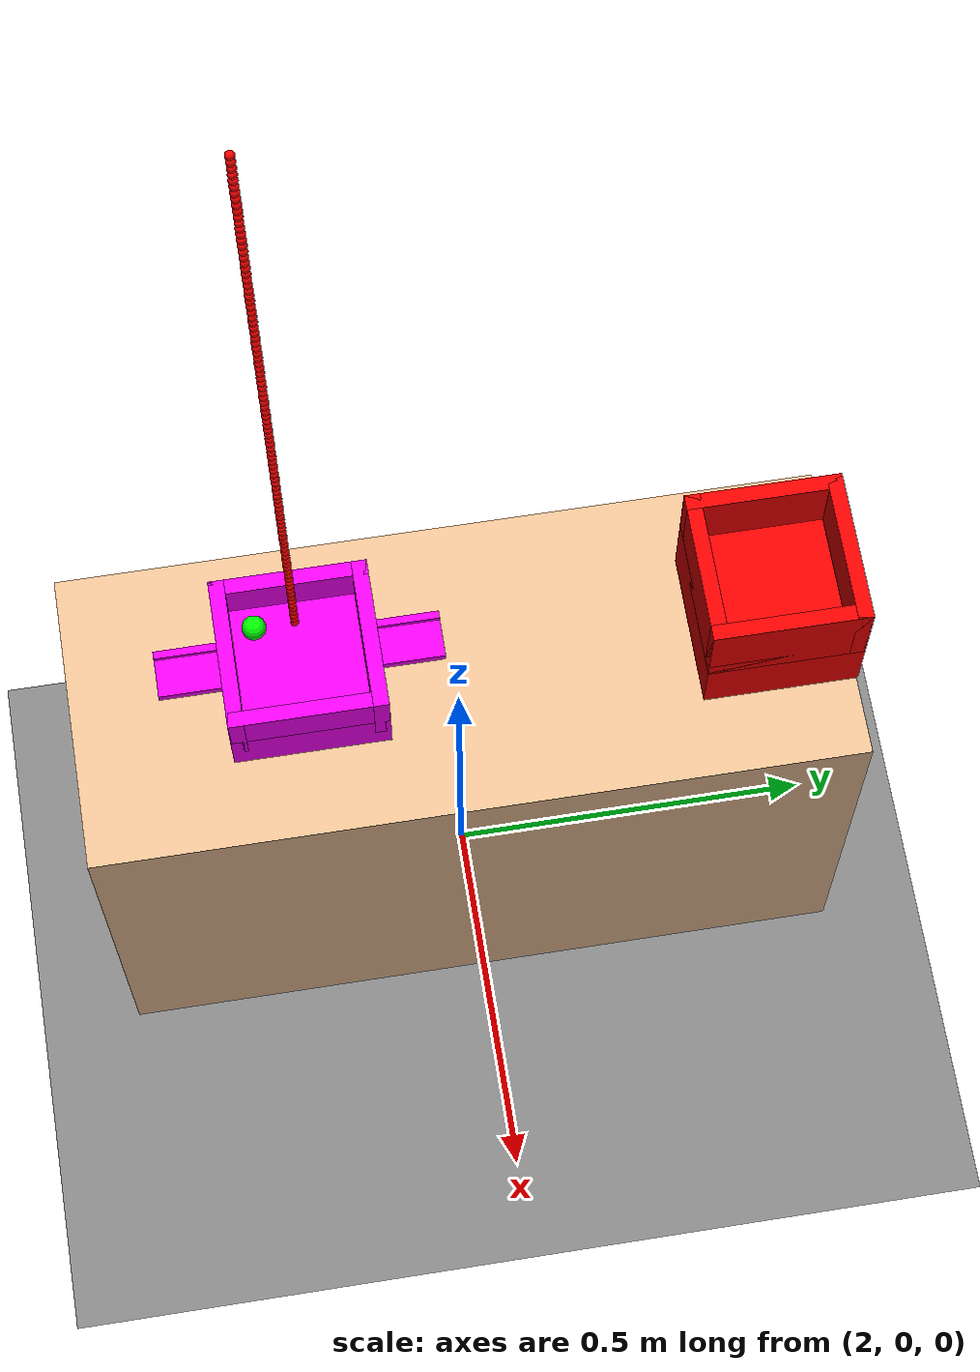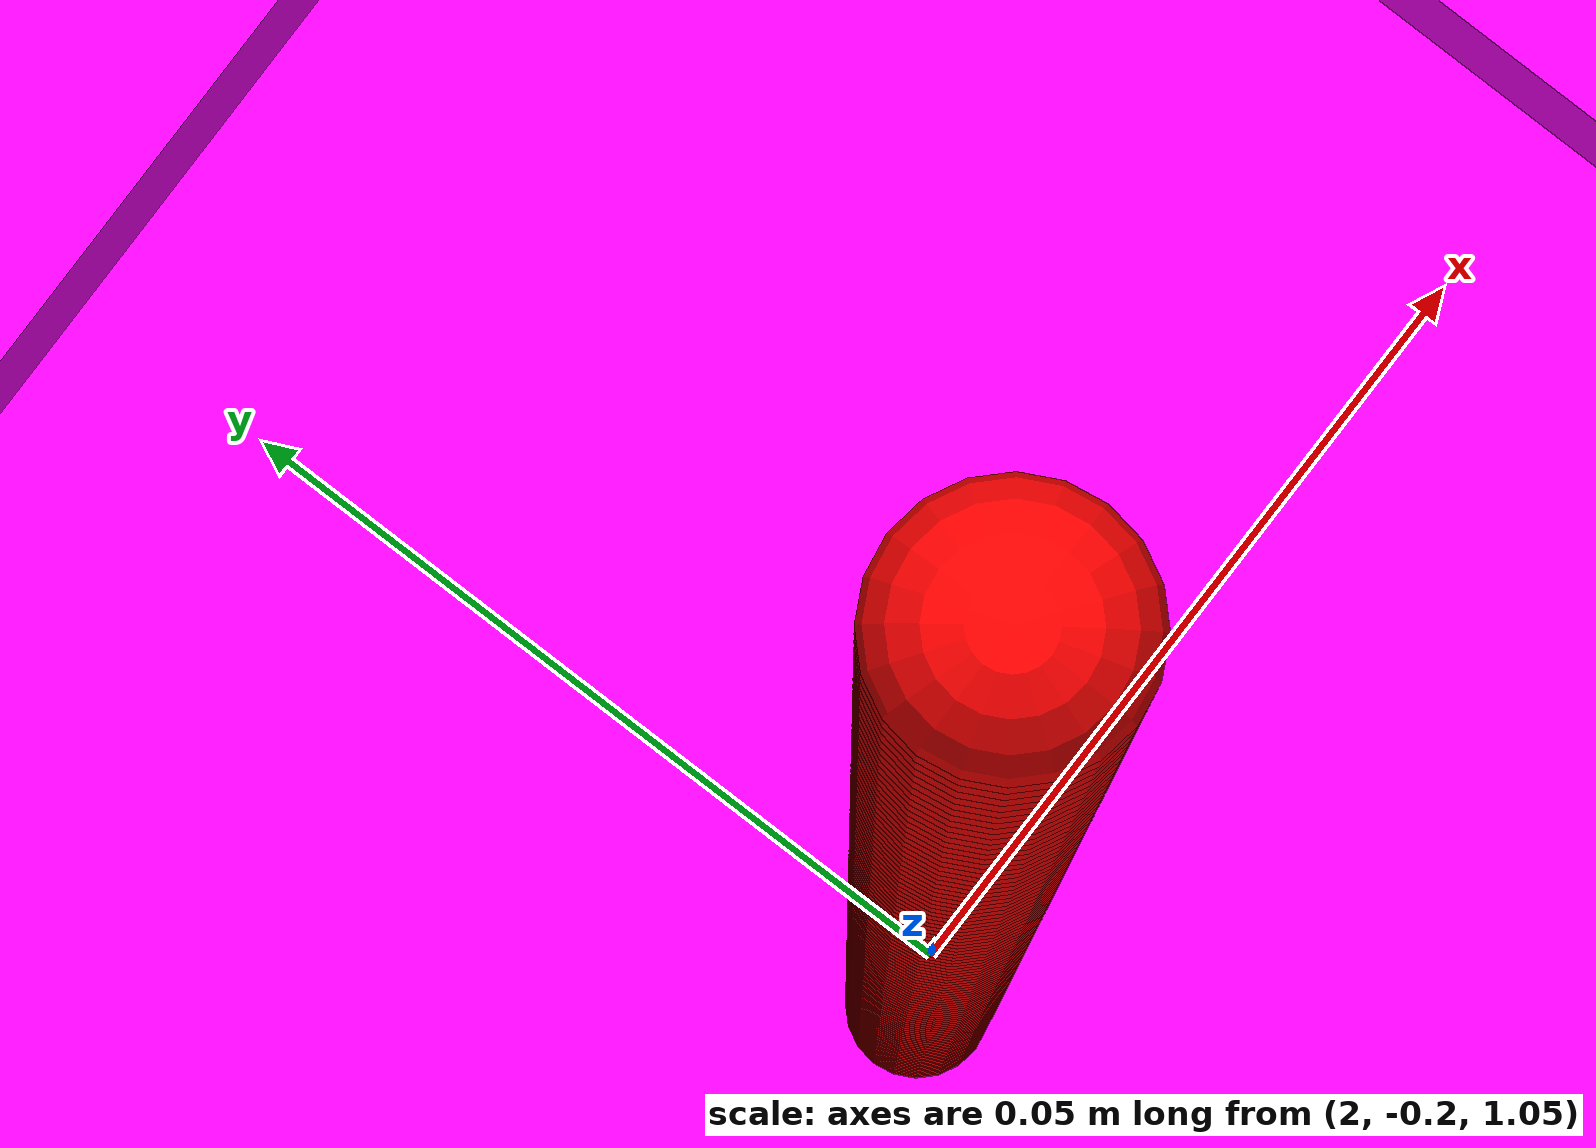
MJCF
<mujoco>
 <option timestep="0.001" integrator="RK4" solver="CG" gravity="0 0 -9.81">
    <flag sensornoise="disable" contact="enable"/>
  	</option>

    <default>
        <geom condim="4" solimp="0.99 0.99 0" solref="0.01 1" friction="1 0.005 0.0001"/>
    </default>

  <asset>
    <texture type="skybox" builtin="gradient" rgb1="1 1 1" rgb2=".6 .8 1" width="256" height="256"/>
	<texture name="grid" type="2d" builtin="checker" width="112" height="112" rgb1="0 0 0" rgb2="1 1 1" />
    <material name="grid" texture="grid" texrepeat="1 1" texuniform="true" reflectance=".2" />
  </asset>

  <worldbody>
    <geom name="floor" size="0 0 .05" type="plane" material="grid" condim="3" />
		<light diffuse="1 1 1" pos="2 0 4" dir="0 0 -1" />
		<light diffuse="1 1 1" pos="2 2 4" dir="0 0 -1" />
		<light diffuse="1 1 1" pos="2 -2 4" dir="0 0 -1" />
  </worldbody>

  <worldbody>
		<body name="table" pos="2 0 0.3">
			<geom name="table_geom" type="box" size="0.2 0.5 0.3" rgba=".89 0.72 .56 1"/>
		</body>

		<body name="bowl" pos="2 0.4 0.7">
			<freejoint/>
			<geom name="bottom" type="box" size="0.1 0.1 0.05" pos="0 0 -0.04" rgba="1 0 0 1"/>

			<geom name="side1" type="box" size="0.01 0.1 0.05" pos="0.09 0 0.04" rgba="1 0 0 1"/>
			<geom name="side2" type="box" size="0.01 0.1 0.05" pos="-0.09 0 0.04" rgba="1 0 0 1"/>
			<geom name="side3" type="box" size="0.1 0.01 0.05" pos="0 0.09 0.04" rgba="1 0 0 1"/>
			<geom name="side4" type="box" size="0.1 0.01 0.05" pos="0 -0.09 0.04" rgba="1 0 0 1"/>
		</body>

        <body name="pot" pos="2 -0.2 0.7" >
			<freejoint/>
			<inertial pos="0.0 0.0 0.0" mass="0.01" diaginertia="0.0008 0.0008 0.00015" />
			<geom name="pot_bottom" type="box" size="0.1 0.1 0.03" pos="0 0 -0.04" rgba="1 0 1 1"/>

			<geom name="pot_side1" type="box" size="0.01 0.1 0.04" pos="0.09 0 0.0" rgba="1 0 1 1" axisangle="0 1 0 0.0"/>
			<geom name="pot_side2" type="box" size="0.01 0.1 0.04" pos="-0.09 0 0.0" rgba="1 0 1 1"/>
			<geom name="pot_side3" type="box" size="0.1 0.01 0.04" pos="0 0.09 0.0" rgba="1 0 1 1"/>
			<geom name="pot_side4" type="box" size="0.1 0.01 0.04" pos="0 -0.09 0.0" rgba="1 0 1 1"/>
			<geom name="pot_side5" type="box" size="0.03 0.04 0.005" pos="0 -0.14 0.0" rgba="1 0 1 1"/>
			<geom name="pot_side6" type="box" size="0.03 0.04 0.005" pos="0 0.14 0.0" rgba="1 0 1 1"/>

      <geom name="pot_side7" type="box" size="0.005 0.04 0.01" pos="-0.025 -0.14 0.0" rgba="1 0 1 1"/>
      <geom name="pot_side8" type="box" size="0.005 0.04 0.01" pos="-0.025 0.14 0.0" rgba="1 0 1 1"/>
		</body>
	</worldbody>

  <worldbody>
		<body name="sync_ball0" pos="2 -0.2 0.8">
			<freejoint/> <inertial pos="0.0 0.0 0.0" mass="0.0001" diaginertia="0.000000001 0.000000001 0.000000001" />
			<geom name="ball0" type="sphere" size="0.005" rgba="1 0 0 1"/>
		</body>
		<body name="sync_ball1" pos="2 -0.2 0.81">
			<freejoint/> <inertial pos="0.0 0.0 0.0" mass="0.0001" diaginertia="0.000000001 0.000000001 0.000000001" />
			<geom name="ball1" type="sphere" size="0.005" rgba="1 0 0 1"/>
		</body>
		<body name="sync_ball2" pos="2 -0.2 0.8200000000000001">
			<freejoint/> <inertial pos="0.0 0.0 0.0" mass="0.0001" diaginertia="0.000000001 0.000000001 0.000000001" />
			<geom name="ball2" type="sphere" size="0.005" rgba="1 0 0 1"/>
		</body>
		<body name="sync_ball3" pos="2 -0.2 0.8300000000000001">
			<freejoint/> <inertial pos="0.0 0.0 0.0" mass="0.0001" diaginertia="0.000000001 0.000000001 0.000000001" />
			<geom name="ball3" type="sphere" size="0.005" rgba="1 0 0 1"/>
		</body>
		<body name="sync_ball4" pos="2 -0.2 0.8400000000000001">
			<freejoint/> <inertial pos="0.0 0.0 0.0" mass="0.0001" diaginertia="0.000000001 0.000000001 0.000000001" />
			<geom name="ball4" type="sphere" size="0.005" rgba="1 0 0 1"/>
		</body>
		<body name="sync_ball5" pos="2 -0.2 0.8500000000000001">
			<freejoint/> <inertial pos="0.0 0.0 0.0" mass="0.0001" diaginertia="0.000000001 0.000000001 0.000000001" />
			<geom name="ball5" type="sphere" size="0.005" rgba="1 0 0 1"/>
		</body>
		<body name="sync_ball6" pos="2 -0.2 0.8600000000000001">
			<freejoint/> <inertial pos="0.0 0.0 0.0" mass="0.0001" diaginertia="0.000000001 0.000000001 0.000000001" />
			<geom name="ball6" type="sphere" size="0.005" rgba="1 0 0 1"/>
		</body>
		<body name="sync_ball7" pos="2 -0.2 0.8700000000000001">
			<freejoint/> <inertial pos="0.0 0.0 0.0" mass="0.0001" diaginertia="0.000000001 0.000000001 0.000000001" />
			<geom name="ball7" type="sphere" size="0.005" rgba="1 0 0 1"/>
		</body>
		<body name="sync_ball8" pos="2 -0.2 0.88">
			<freejoint/> <inertial pos="0.0 0.0 0.0" mass="0.0001" diaginertia="0.000000001 0.000000001 0.000000001" />
			<geom name="ball8" type="sphere" size="0.005" rgba="1 0 0 1"/>
		</body>
		<body name="sync_ball9" pos="2 -0.2 0.89">
			<freejoint/> <inertial pos="0.0 0.0 0.0" mass="0.0001" diaginertia="0.000000001 0.000000001 0.000000001" />
			<geom name="ball9" type="sphere" size="0.005" rgba="1 0 0 1"/>
		</body>
		<body name="sync_ball10" pos="2 -0.2 0.9">
			<freejoint/> <inertial pos="0.0 0.0 0.0" mass="0.0001" diaginertia="0.000000001 0.000000001 0.000000001" />
			<geom name="ball10" type="sphere" size="0.005" rgba="1 0 0 1"/>
		</body>
		<body name="sync_ball11" pos="2 -0.2 0.91">
			<freejoint/> <inertial pos="0.0 0.0 0.0" mass="0.0001" diaginertia="0.000000001 0.000000001 0.000000001" />
			<geom name="ball11" type="sphere" size="0.005" rgba="1 0 0 1"/>
		</body>
		<body name="sync_ball12" pos="2 -0.2 0.92">
			<freejoint/> <inertial pos="0.0 0.0 0.0" mass="0.0001" diaginertia="0.000000001 0.000000001 0.000000001" />
			<geom name="ball12" type="sphere" size="0.005" rgba="1 0 0 1"/>
		</body>
		<body name="sync_ball13" pos="2 -0.2 0.93">
			<freejoint/> <inertial pos="0.0 0.0 0.0" mass="0.0001" diaginertia="0.000000001 0.000000001 0.000000001" />
			<geom name="ball13" type="sphere" size="0.005" rgba="1 0 0 1"/>
		</body>
		<body name="sync_ball14" pos="2 -0.2 0.9400000000000001">
			<freejoint/> <inertial pos="0.0 0.0 0.0" mass="0.0001" diaginertia="0.000000001 0.000000001 0.000000001" />
			<geom name="ball14" type="sphere" size="0.005" rgba="1 0 0 1"/>
		</body>
		<body name="sync_ball15" pos="2 -0.2 0.9500000000000001">
			<freejoint/> <inertial pos="0.0 0.0 0.0" mass="0.0001" diaginertia="0.000000001 0.000000001 0.000000001" />
			<geom name="ball15" type="sphere" size="0.005" rgba="1 0 0 1"/>
		</body>
		<body name="sync_ball16" pos="2 -0.2 0.9600000000000001">
			<freejoint/> <inertial pos="0.0 0.0 0.0" mass="0.0001" diaginertia="0.000000001 0.000000001 0.000000001" />
			<geom name="ball16" type="sphere" size="0.005" rgba="1 0 0 1"/>
		</body>
		<body name="sync_ball17" pos="2 -0.2 0.9700000000000001">
			<freejoint/> <inertial pos="0.0 0.0 0.0" mass="0.0001" diaginertia="0.000000001 0.000000001 0.000000001" />
			<geom name="ball17" type="sphere" size="0.005" rgba="1 0 0 1"/>
		</body>
		<body name="sync_ball18" pos="2 -0.2 0.98">
			<freejoint/> <inertial pos="0.0 0.0 0.0" mass="0.0001" diaginertia="0.000000001 0.000000001 0.000000001" />
			<geom name="ball18" type="sphere" size="0.005" rgba="1 0 0 1"/>
		</body>
		<body name="sync_ball19" pos="2 -0.2 0.99">
			<freejoint/> <inertial pos="0.0 0.0 0.0" mass="0.0001" diaginertia="0.000000001 0.000000001 0.000000001" />
			<geom name="ball19" type="sphere" size="0.005" rgba="1 0 0 1"/>
		</body>
		<body name="sync_ball20" pos="2 -0.2 1.0">
			<freejoint/> <inertial pos="0.0 0.0 0.0" mass="0.0001" diaginertia="0.000000001 0.000000001 0.000000001" />
			<geom name="ball20" type="sphere" size="0.005" rgba="1 0 0 1"/>
		</body>
		<body name="sync_ball21" pos="2 -0.2 1.01">
			<freejoint/> <inertial pos="0.0 0.0 0.0" mass="0.0001" diaginertia="0.000000001 0.000000001 0.000000001" />
			<geom name="ball21" type="sphere" size="0.005" rgba="1 0 0 1"/>
		</body>
		<body name="sync_ball22" pos="2 -0.2 1.02">
			<freejoint/> <inertial pos="0.0 0.0 0.0" mass="0.0001" diaginertia="0.000000001 0.000000001 0.000000001" />
			<geom name="ball22" type="sphere" size="0.005" rgba="1 0 0 1"/>
		</body>
		<body name="sync_ball23" pos="2 -0.2 1.03">
			<freejoint/> <inertial pos="0.0 0.0 0.0" mass="0.0001" diaginertia="0.000000001 0.000000001 0.000000001" />
			<geom name="ball23" type="sphere" size="0.005" rgba="1 0 0 1"/>
		</body>
		<body name="sync_ball24" pos="2 -0.2 1.04">
			<freejoint/> <inertial pos="0.0 0.0 0.0" mass="0.0001" diaginertia="0.000000001 0.000000001 0.000000001" />
			<geom name="ball24" type="sphere" size="0.005" rgba="1 0 0 1"/>
		</body>
		<body name="sync_ball25" pos="2 -0.2 1.05">
			<freejoint/> <inertial pos="0.0 0.0 0.0" mass="0.0001" diaginertia="0.000000001 0.000000001 0.000000001" />
			<geom name="ball25" type="sphere" size="0.005" rgba="1 0 0 1"/>
		</body>
		<body name="sync_ball26" pos="2 -0.2 1.06">
			<freejoint/> <inertial pos="0.0 0.0 0.0" mass="0.0001" diaginertia="0.000000001 0.000000001 0.000000001" />
			<geom name="ball26" type="sphere" size="0.005" rgba="1 0 0 1"/>
		</body>
		<body name="sync_ball27" pos="2 -0.2 1.07">
			<freejoint/> <inertial pos="0.0 0.0 0.0" mass="0.0001" diaginertia="0.000000001 0.000000001 0.000000001" />
			<geom name="ball27" type="sphere" size="0.005" rgba="1 0 0 1"/>
		</body>
		<body name="sync_ball28" pos="2 -0.2 1.08">
			<freejoint/> <inertial pos="0.0 0.0 0.0" mass="0.0001" diaginertia="0.000000001 0.000000001 0.000000001" />
			<geom name="ball28" type="sphere" size="0.005" rgba="1 0 0 1"/>
		</body>
		<body name="sync_ball29" pos="2 -0.2 1.09">
			<freejoint/> <inertial pos="0.0 0.0 0.0" mass="0.0001" diaginertia="0.000000001 0.000000001 0.000000001" />
			<geom name="ball29" type="sphere" size="0.005" rgba="1 0 0 1"/>
		</body>
		<body name="sync_ball30" pos="2 -0.2 1.1">
			<freejoint/> <inertial pos="0.0 0.0 0.0" mass="0.0001" diaginertia="0.000000001 0.000000001 0.000000001" />
			<geom name="ball30" type="sphere" size="0.005" rgba="1 0 0 1"/>
		</body>
		<body name="sync_ball31" pos="2 -0.2 1.11">
			<freejoint/> <inertial pos="0.0 0.0 0.0" mass="0.0001" diaginertia="0.000000001 0.000000001 0.000000001" />
			<geom name="ball31" type="sphere" size="0.005" rgba="1 0 0 1"/>
		</body>
		<body name="sync_ball32" pos="2 -0.2 1.12">
			<freejoint/> <inertial pos="0.0 0.0 0.0" mass="0.0001" diaginertia="0.000000001 0.000000001 0.000000001" />
			<geom name="ball32" type="sphere" size="0.005" rgba="1 0 0 1"/>
		</body>
		<body name="sync_ball33" pos="2 -0.2 1.1300000000000001">
			<freejoint/> <inertial pos="0.0 0.0 0.0" mass="0.0001" diaginertia="0.000000001 0.000000001 0.000000001" />
			<geom name="ball33" type="sphere" size="0.005" rgba="1 0 0 1"/>
		</body>
		<body name="sync_ball34" pos="2 -0.2 1.1400000000000001">
			<freejoint/> <inertial pos="0.0 0.0 0.0" mass="0.0001" diaginertia="0.000000001 0.000000001 0.000000001" />
			<geom name="ball34" type="sphere" size="0.005" rgba="1 0 0 1"/>
		</body>
		<body name="sync_ball35" pos="2 -0.2 1.1500000000000001">
			<freejoint/> <inertial pos="0.0 0.0 0.0" mass="0.0001" diaginertia="0.000000001 0.000000001 0.000000001" />
			<geom name="ball35" type="sphere" size="0.005" rgba="1 0 0 1"/>
		</body>
		<body name="sync_ball36" pos="2 -0.2 1.1600000000000001">
			<freejoint/> <inertial pos="0.0 0.0 0.0" mass="0.0001" diaginertia="0.000000001 0.000000001 0.000000001" />
			<geom name="ball36" type="sphere" size="0.005" rgba="1 0 0 1"/>
		</body>
		<body name="sync_ball37" pos="2 -0.2 1.17">
			<freejoint/> <inertial pos="0.0 0.0 0.0" mass="0.0001" diaginertia="0.000000001 0.000000001 0.000000001" />
			<geom name="ball37" type="sphere" size="0.005" rgba="1 0 0 1"/>
		</body>
		<body name="sync_ball38" pos="2 -0.2 1.1800000000000002">
			<freejoint/> <inertial pos="0.0 0.0 0.0" mass="0.0001" diaginertia="0.000000001 0.000000001 0.000000001" />
			<geom name="ball38" type="sphere" size="0.005" rgba="1 0 0 1"/>
		</body>
		<body name="sync_ball39" pos="2 -0.2 1.19">
			<freejoint/> <inertial pos="0.0 0.0 0.0" mass="0.0001" diaginertia="0.000000001 0.000000001 0.000000001" />
			<geom name="ball39" type="sphere" size="0.005" rgba="1 0 0 1"/>
		</body>
		<body name="sync_ball40" pos="2 -0.2 1.2000000000000002">
			<freejoint/> <inertial pos="0.0 0.0 0.0" mass="0.0001" diaginertia="0.000000001 0.000000001 0.000000001" />
			<geom name="ball40" type="sphere" size="0.005" rgba="1 0 0 1"/>
		</body>
		<body name="sync_ball41" pos="2 -0.2 1.21">
			<freejoint/> <inertial pos="0.0 0.0 0.0" mass="0.0001" diaginertia="0.000000001 0.000000001 0.000000001" />
			<geom name="ball41" type="sphere" size="0.005" rgba="1 0 0 1"/>
		</body>
		<body name="sync_ball42" pos="2 -0.2 1.22">
			<freejoint/> <inertial pos="0.0 0.0 0.0" mass="0.0001" diaginertia="0.000000001 0.000000001 0.000000001" />
			<geom name="ball42" type="sphere" size="0.005" rgba="1 0 0 1"/>
		</body>
		<body name="sync_ball43" pos="2 -0.2 1.23">
			<freejoint/> <inertial pos="0.0 0.0 0.0" mass="0.0001" diaginertia="0.000000001 0.000000001 0.000000001" />
			<geom name="ball43" type="sphere" size="0.005" rgba="1 0 0 1"/>
		</body>
		<body name="sync_ball44" pos="2 -0.2 1.24">
			<freejoint/> <inertial pos="0.0 0.0 0.0" mass="0.0001" diaginertia="0.000000001 0.000000001 0.000000001" />
			<geom name="ball44" type="sphere" size="0.005" rgba="1 0 0 1"/>
		</body>
		<body name="sync_ball45" pos="2 -0.2 1.25">
			<freejoint/> <inertial pos="0.0 0.0 0.0" mass="0.0001" diaginertia="0.000000001 0.000000001 0.000000001" />
			<geom name="ball45" type="sphere" size="0.005" rgba="1 0 0 1"/>
		</body>
		<body name="sync_ball46" pos="2 -0.2 1.26">
			<freejoint/> <inertial pos="0.0 0.0 0.0" mass="0.0001" diaginertia="0.000000001 0.000000001 0.000000001" />
			<geom name="ball46" type="sphere" size="0.005" rgba="1 0 0 1"/>
		</body>
		<body name="sync_ball47" pos="2 -0.2 1.27">
			<freejoint/> <inertial pos="0.0 0.0 0.0" mass="0.0001" diaginertia="0.000000001 0.000000001 0.000000001" />
			<geom name="ball47" type="sphere" size="0.005" rgba="1 0 0 1"/>
		</body>
		<body name="sync_ball48" pos="2 -0.2 1.28">
			<freejoint/> <inertial pos="0.0 0.0 0.0" mass="0.0001" diaginertia="0.000000001 0.000000001 0.000000001" />
			<geom name="ball48" type="sphere" size="0.005" rgba="1 0 0 1"/>
		</body>
		<body name="sync_ball49" pos="2 -0.2 1.29">
			<freejoint/> <inertial pos="0.0 0.0 0.0" mass="0.0001" diaginertia="0.000000001 0.000000001 0.000000001" />
			<geom name="ball49" type="sphere" size="0.005" rgba="1 0 0 1"/>
		</body>
		<body name="sync_ball50" pos="2 -0.2 1.3">
			<freejoint/> <inertial pos="0.0 0.0 0.0" mass="0.0001" diaginertia="0.000000001 0.000000001 0.000000001" />
			<geom name="ball50" type="sphere" size="0.005" rgba="1 0 0 1"/>
		</body>
		<body name="sync_ball51" pos="2 -0.2 1.31">
			<freejoint/> <inertial pos="0.0 0.0 0.0" mass="0.0001" diaginertia="0.000000001 0.000000001 0.000000001" />
			<geom name="ball51" type="sphere" size="0.005" rgba="1 0 0 1"/>
		</body>
		<body name="sync_ball52" pos="2 -0.2 1.32">
			<freejoint/> <inertial pos="0.0 0.0 0.0" mass="0.0001" diaginertia="0.000000001 0.000000001 0.000000001" />
			<geom name="ball52" type="sphere" size="0.005" rgba="1 0 0 1"/>
		</body>
		<body name="sync_ball53" pos="2 -0.2 1.33">
			<freejoint/> <inertial pos="0.0 0.0 0.0" mass="0.0001" diaginertia="0.000000001 0.000000001 0.000000001" />
			<geom name="ball53" type="sphere" size="0.005" rgba="1 0 0 1"/>
		</body>
		<body name="sync_ball54" pos="2 -0.2 1.34">
			<freejoint/> <inertial pos="0.0 0.0 0.0" mass="0.0001" diaginertia="0.000000001 0.000000001 0.000000001" />
			<geom name="ball54" type="sphere" size="0.005" rgba="1 0 0 1"/>
		</body>
		<body name="sync_ball55" pos="2 -0.2 1.35">
			<freejoint/> <inertial pos="0.0 0.0 0.0" mass="0.0001" diaginertia="0.000000001 0.000000001 0.000000001" />
			<geom name="ball55" type="sphere" size="0.005" rgba="1 0 0 1"/>
		</body>
		<body name="sync_ball56" pos="2 -0.2 1.36">
			<freejoint/> <inertial pos="0.0 0.0 0.0" mass="0.0001" diaginertia="0.000000001 0.000000001 0.000000001" />
			<geom name="ball56" type="sphere" size="0.005" rgba="1 0 0 1"/>
		</body>
		<body name="sync_ball57" pos="2 -0.2 1.37">
			<freejoint/> <inertial pos="0.0 0.0 0.0" mass="0.0001" diaginertia="0.000000001 0.000000001 0.000000001" />
			<geom name="ball57" type="sphere" size="0.005" rgba="1 0 0 1"/>
		</body>
		<body name="sync_ball58" pos="2 -0.2 1.38">
			<freejoint/> <inertial pos="0.0 0.0 0.0" mass="0.0001" diaginertia="0.000000001 0.000000001 0.000000001" />
			<geom name="ball58" type="sphere" size="0.005" rgba="1 0 0 1"/>
		</body>
		<body name="sync_ball59" pos="2 -0.2 1.3900000000000001">
			<freejoint/> <inertial pos="0.0 0.0 0.0" mass="0.0001" diaginertia="0.000000001 0.000000001 0.000000001" />
			<geom name="ball59" type="sphere" size="0.005" rgba="1 0 0 1"/>
		</body>
		<body name="sync_ball60" pos="2 -0.2 1.4">
			<freejoint/> <inertial pos="0.0 0.0 0.0" mass="0.0001" diaginertia="0.000000001 0.000000001 0.000000001" />
			<geom name="ball60" type="sphere" size="0.005" rgba="1 0 0 1"/>
		</body>
		<body name="sync_ball61" pos="2 -0.2 1.4100000000000001">
			<freejoint/> <inertial pos="0.0 0.0 0.0" mass="0.0001" diaginertia="0.000000001 0.000000001 0.000000001" />
			<geom name="ball61" type="sphere" size="0.005" rgba="1 0 0 1"/>
		</body>
		<body name="sync_ball62" pos="2 -0.2 1.42">
			<freejoint/> <inertial pos="0.0 0.0 0.0" mass="0.0001" diaginertia="0.000000001 0.000000001 0.000000001" />
			<geom name="ball62" type="sphere" size="0.005" rgba="1 0 0 1"/>
		</body>
		<body name="sync_ball63" pos="2 -0.2 1.4300000000000002">
			<freejoint/> <inertial pos="0.0 0.0 0.0" mass="0.0001" diaginertia="0.000000001 0.000000001 0.000000001" />
			<geom name="ball63" type="sphere" size="0.005" rgba="1 0 0 1"/>
		</body>
		<body name="sync_ball64" pos="2 -0.2 1.44">
			<freejoint/> <inertial pos="0.0 0.0 0.0" mass="0.0001" diaginertia="0.000000001 0.000000001 0.000000001" />
			<geom name="ball64" type="sphere" size="0.005" rgba="1 0 0 1"/>
		</body>
		<body name="sync_ball65" pos="2 -0.2 1.4500000000000002">
			<freejoint/> <inertial pos="0.0 0.0 0.0" mass="0.0001" diaginertia="0.000000001 0.000000001 0.000000001" />
			<geom name="ball65" type="sphere" size="0.005" rgba="1 0 0 1"/>
		</body>
		<body name="sync_ball66" pos="2 -0.2 1.46">
			<freejoint/> <inertial pos="0.0 0.0 0.0" mass="0.0001" diaginertia="0.000000001 0.000000001 0.000000001" />
			<geom name="ball66" type="sphere" size="0.005" rgba="1 0 0 1"/>
		</body>
		<body name="sync_ball67" pos="2 -0.2 1.4700000000000002">
			<freejoint/> <inertial pos="0.0 0.0 0.0" mass="0.0001" diaginertia="0.000000001 0.000000001 0.000000001" />
			<geom name="ball67" type="sphere" size="0.005" rgba="1 0 0 1"/>
		</body>
		<body name="sync_ball68" pos="2 -0.2 1.48">
			<freejoint/> <inertial pos="0.0 0.0 0.0" mass="0.0001" diaginertia="0.000000001 0.000000001 0.000000001" />
			<geom name="ball68" type="sphere" size="0.005" rgba="1 0 0 1"/>
		</body>
		<body name="sync_ball69" pos="2 -0.2 1.4900000000000002">
			<freejoint/> <inertial pos="0.0 0.0 0.0" mass="0.0001" diaginertia="0.000000001 0.000000001 0.000000001" />
			<geom name="ball69" type="sphere" size="0.005" rgba="1 0 0 1"/>
		</body>
		<body name="sync_ball70" pos="2 -0.2 1.5">
			<freejoint/> <inertial pos="0.0 0.0 0.0" mass="0.0001" diaginertia="0.000000001 0.000000001 0.000000001" />
			<geom name="ball70" type="sphere" size="0.005" rgba="1 0 0 1"/>
		</body>
		<body name="sync_ball71" pos="2 -0.2 1.51">
			<freejoint/> <inertial pos="0.0 0.0 0.0" mass="0.0001" diaginertia="0.000000001 0.000000001 0.000000001" />
			<geom name="ball71" type="sphere" size="0.005" rgba="1 0 0 1"/>
		</body>
		<body name="sync_ball72" pos="2 -0.2 1.52">
			<freejoint/> <inertial pos="0.0 0.0 0.0" mass="0.0001" diaginertia="0.000000001 0.000000001 0.000000001" />
			<geom name="ball72" type="sphere" size="0.005" rgba="1 0 0 1"/>
		</body>
		<body name="sync_ball73" pos="2 -0.2 1.53">
			<freejoint/> <inertial pos="0.0 0.0 0.0" mass="0.0001" diaginertia="0.000000001 0.000000001 0.000000001" />
			<geom name="ball73" type="sphere" size="0.005" rgba="1 0 0 1"/>
		</body>
		<body name="sync_ball74" pos="2 -0.2 1.54">
			<freejoint/> <inertial pos="0.0 0.0 0.0" mass="0.0001" diaginertia="0.000000001 0.000000001 0.000000001" />
			<geom name="ball74" type="sphere" size="0.005" rgba="1 0 0 1"/>
		</body>
		<body name="sync_ball75" pos="2 -0.2 1.55">
			<freejoint/> <inertial pos="0.0 0.0 0.0" mass="0.0001" diaginertia="0.000000001 0.000000001 0.000000001" />
			<geom name="ball75" type="sphere" size="0.005" rgba="1 0 0 1"/>
		</body>
		<body name="sync_ball76" pos="2 -0.2 1.56">
			<freejoint/> <inertial pos="0.0 0.0 0.0" mass="0.0001" diaginertia="0.000000001 0.000000001 0.000000001" />
			<geom name="ball76" type="sphere" size="0.005" rgba="1 0 0 1"/>
		</body>
		<body name="sync_ball77" pos="2 -0.2 1.57">
			<freejoint/> <inertial pos="0.0 0.0 0.0" mass="0.0001" diaginertia="0.000000001 0.000000001 0.000000001" />
			<geom name="ball77" type="sphere" size="0.005" rgba="1 0 0 1"/>
		</body>
		<body name="sync_ball78" pos="2 -0.2 1.58">
			<freejoint/> <inertial pos="0.0 0.0 0.0" mass="0.0001" diaginertia="0.000000001 0.000000001 0.000000001" />
			<geom name="ball78" type="sphere" size="0.005" rgba="1 0 0 1"/>
		</body>
		<body name="sync_ball79" pos="2 -0.2 1.59">
			<freejoint/> <inertial pos="0.0 0.0 0.0" mass="0.0001" diaginertia="0.000000001 0.000000001 0.000000001" />
			<geom name="ball79" type="sphere" size="0.005" rgba="1 0 0 1"/>
		</body>
		<body name="sync_ball80" pos="2 -0.2 1.6">
			<freejoint/> <inertial pos="0.0 0.0 0.0" mass="0.0001" diaginertia="0.000000001 0.000000001 0.000000001" />
			<geom name="ball80" type="sphere" size="0.005" rgba="1 0 0 1"/>
		</body>
		<body name="sync_ball81" pos="2 -0.2 1.61">
			<freejoint/> <inertial pos="0.0 0.0 0.0" mass="0.0001" diaginertia="0.000000001 0.000000001 0.000000001" />
			<geom name="ball81" type="sphere" size="0.005" rgba="1 0 0 1"/>
		</body>
		<body name="sync_ball82" pos="2 -0.2 1.62">
			<freejoint/> <inertial pos="0.0 0.0 0.0" mass="0.0001" diaginertia="0.000000001 0.000000001 0.000000001" />
			<geom name="ball82" type="sphere" size="0.005" rgba="1 0 0 1"/>
		</body>
		<body name="sync_ball83" pos="2 -0.2 1.6300000000000001">
			<freejoint/> <inertial pos="0.0 0.0 0.0" mass="0.0001" diaginertia="0.000000001 0.000000001 0.000000001" />
			<geom name="ball83" type="sphere" size="0.005" rgba="1 0 0 1"/>
		</body>
		<body name="sync_ball84" pos="2 -0.2 1.6400000000000001">
			<freejoint/> <inertial pos="0.0 0.0 0.0" mass="0.0001" diaginertia="0.000000001 0.000000001 0.000000001" />
			<geom name="ball84" type="sphere" size="0.005" rgba="1 0 0 1"/>
		</body>
		<body name="sync_ball85" pos="2 -0.2 1.65">
			<freejoint/> <inertial pos="0.0 0.0 0.0" mass="0.0001" diaginertia="0.000000001 0.000000001 0.000000001" />
			<geom name="ball85" type="sphere" size="0.005" rgba="1 0 0 1"/>
		</body>
		<body name="sync_ball86" pos="2 -0.2 1.6600000000000001">
			<freejoint/> <inertial pos="0.0 0.0 0.0" mass="0.0001" diaginertia="0.000000001 0.000000001 0.000000001" />
			<geom name="ball86" type="sphere" size="0.005" rgba="1 0 0 1"/>
		</body>
		<body name="sync_ball87" pos="2 -0.2 1.67">
			<freejoint/> <inertial pos="0.0 0.0 0.0" mass="0.0001" diaginertia="0.000000001 0.000000001 0.000000001" />
			<geom name="ball87" type="sphere" size="0.005" rgba="1 0 0 1"/>
		</body>
		<body name="sync_ball88" pos="2 -0.2 1.6800000000000002">
			<freejoint/> <inertial pos="0.0 0.0 0.0" mass="0.0001" diaginertia="0.000000001 0.000000001 0.000000001" />
			<geom name="ball88" type="sphere" size="0.005" rgba="1 0 0 1"/>
		</body>
		<body name="sync_ball89" pos="2 -0.2 1.69">
			<freejoint/> <inertial pos="0.0 0.0 0.0" mass="0.0001" diaginertia="0.000000001 0.000000001 0.000000001" />
			<geom name="ball89" type="sphere" size="0.005" rgba="1 0 0 1"/>
		</body>
		<body name="sync_ball90" pos="2 -0.2 1.7000000000000002">
			<freejoint/> <inertial pos="0.0 0.0 0.0" mass="0.0001" diaginertia="0.000000001 0.000000001 0.000000001" />
			<geom name="ball90" type="sphere" size="0.005" rgba="1 0 0 1"/>
		</body>
		<body name="sync_ball91" pos="2 -0.2 1.71">
			<freejoint/> <inertial pos="0.0 0.0 0.0" mass="0.0001" diaginertia="0.000000001 0.000000001 0.000000001" />
			<geom name="ball91" type="sphere" size="0.005" rgba="1 0 0 1"/>
		</body>
		<body name="sync_ball92" pos="2 -0.2 1.7200000000000002">
			<freejoint/> <inertial pos="0.0 0.0 0.0" mass="0.0001" diaginertia="0.000000001 0.000000001 0.000000001" />
			<geom name="ball92" type="sphere" size="0.005" rgba="1 0 0 1"/>
		</body>
		<body name="sync_ball93" pos="2 -0.2 1.73">
			<freejoint/> <inertial pos="0.0 0.0 0.0" mass="0.0001" diaginertia="0.000000001 0.000000001 0.000000001" />
			<geom name="ball93" type="sphere" size="0.005" rgba="1 0 0 1"/>
		</body>
		<body name="sync_ball94" pos="2 -0.2 1.7400000000000002">
			<freejoint/> <inertial pos="0.0 0.0 0.0" mass="0.0001" diaginertia="0.000000001 0.000000001 0.000000001" />
			<geom name="ball94" type="sphere" size="0.005" rgba="1 0 0 1"/>
		</body>
		<body name="sync_ball95" pos="2 -0.2 1.75">
			<freejoint/> <inertial pos="0.0 0.0 0.0" mass="0.0001" diaginertia="0.000000001 0.000000001 0.000000001" />
			<geom name="ball95" type="sphere" size="0.005" rgba="1 0 0 1"/>
		</body>
		<body name="sync_ball96" pos="2 -0.2 1.76">
			<freejoint/> <inertial pos="0.0 0.0 0.0" mass="0.0001" diaginertia="0.000000001 0.000000001 0.000000001" />
			<geom name="ball96" type="sphere" size="0.005" rgba="1 0 0 1"/>
		</body>
		<body name="sync_ball97" pos="2 -0.2 1.77">
			<freejoint/> <inertial pos="0.0 0.0 0.0" mass="0.0001" diaginertia="0.000000001 0.000000001 0.000000001" />
			<geom name="ball97" type="sphere" size="0.005" rgba="1 0 0 1"/>
		</body>
		<body name="sync_ball98" pos="2 -0.2 1.78">
			<freejoint/> <inertial pos="0.0 0.0 0.0" mass="0.0001" diaginertia="0.000000001 0.000000001 0.000000001" />
			<geom name="ball98" type="sphere" size="0.005" rgba="1 0 0 1"/>
		</body>
		<body name="sync_ball99" pos="2 -0.2 1.79">
			<freejoint/> <inertial pos="0.0 0.0 0.0" mass="0.0001" diaginertia="0.000000001 0.000000001 0.000000001" />
			<geom name="ball99" type="sphere" size="0.005" rgba="1 0 0 1"/>
		</body>
    <body name="big_ball" pos="2 -0.25 0.8">
			<freejoint/> <inertial pos="0.0 0.0 0.0" mass="0.01" diaginertia="0.0001 0.0001 0.0001"/>
			<geom name="big_ball" type="sphere" size="0.015 0.015 0.015" rgba="0 1 0 1"/>
		</body>

	</worldbody>

<contact>
 <pair geom1="ball0" geom2="pot_bottom" friction="0.5 0.0005 0.00001"/>
</contact>
<contact>
 <pair geom1="ball1" geom2="pot_bottom" friction="0.5 0.0005 0.00001"/>
</contact>
<contact>
 <pair geom1="ball2" geom2="pot_bottom" friction="0.5 0.0005 0.00001"/>
</contact>
<contact>
 <pair geom1="ball3" geom2="pot_bottom" friction="0.5 0.0005 0.00001"/>
</contact>
<contact>
 <pair geom1="ball4" geom2="pot_bottom" friction="0.5 0.0005 0.00001"/>
</contact>
<contact>
 <pair geom1="ball5" geom2="pot_bottom" friction="0.5 0.0005 0.00001"/>
</contact>
<contact>
 <pair geom1="ball6" geom2="pot_bottom" friction="0.5 0.0005 0.00001"/>
</contact>
<contact>
 <pair geom1="ball7" geom2="pot_bottom" friction="0.5 0.0005 0.00001"/>
</contact>
<contact>
 <pair geom1="ball8" geom2="pot_bottom" friction="0.5 0.0005 0.00001"/>
</contact>
<contact>
 <pair geom1="ball9" geom2="pot_bottom" friction="0.5 0.0005 0.00001"/>
</contact>
<contact>
 <pair geom1="ball10" geom2="pot_bottom" friction="0.5 0.0005 0.00001"/>
</contact>
<contact>
 <pair geom1="ball11" geom2="pot_bottom" friction="0.5 0.0005 0.00001"/>
</contact>
<contact>
 <pair geom1="ball12" geom2="pot_bottom" friction="0.5 0.0005 0.00001"/>
</contact>
<contact>
 <pair geom1="ball13" geom2="pot_bottom" friction="0.5 0.0005 0.00001"/>
</contact>
<contact>
 <pair geom1="ball14" geom2="pot_bottom" friction="0.5 0.0005 0.00001"/>
</contact>
<contact>
 <pair geom1="ball15" geom2="pot_bottom" friction="0.5 0.0005 0.00001"/>
</contact>
<contact>
 <pair geom1="ball16" geom2="pot_bottom" friction="0.5 0.0005 0.00001"/>
</contact>
<contact>
 <pair geom1="ball17" geom2="pot_bottom" friction="0.5 0.0005 0.00001"/>
</contact>
<contact>
 <pair geom1="ball18" geom2="pot_bottom" friction="0.5 0.0005 0.00001"/>
</contact>
<contact>
 <pair geom1="ball19" geom2="pot_bottom" friction="0.5 0.0005 0.00001"/>
</contact>
<contact>
 <pair geom1="ball20" geom2="pot_bottom" friction="0.5 0.0005 0.00001"/>
</contact>
<contact>
 <pair geom1="ball21" geom2="pot_bottom" friction="0.5 0.0005 0.00001"/>
</contact>
<contact>
 <pair geom1="ball22" geom2="pot_bottom" friction="0.5 0.0005 0.00001"/>
</contact>
<contact>
 <pair geom1="ball23" geom2="pot_bottom" friction="0.5 0.0005 0.00001"/>
</contact>
<contact>
 <pair geom1="ball24" geom2="pot_bottom" friction="0.5 0.0005 0.00001"/>
</contact>
<contact>
 <pair geom1="ball25" geom2="pot_bottom" friction="0.5 0.0005 0.00001"/>
</contact>
<contact>
 <pair geom1="ball26" geom2="pot_bottom" friction="0.5 0.0005 0.00001"/>
</contact>
<contact>
 <pair geom1="ball27" geom2="pot_bottom" friction="0.5 0.0005 0.00001"/>
</contact>
<contact>
 <pair geom1="ball28" geom2="pot_bottom" friction="0.5 0.0005 0.00001"/>
</contact>
<contact>
 <pair geom1="ball29" geom2="pot_bottom" friction="0.5 0.0005 0.00001"/>
</contact>
<contact>
 <pair geom1="ball30" geom2="pot_bottom" friction="0.5 0.0005 0.00001"/>
</contact>
<contact>
 <pair geom1="ball31" geom2="pot_bottom" friction="0.5 0.0005 0.00001"/>
</contact>
<contact>
 <pair geom1="ball32" geom2="pot_bottom" friction="0.5 0.0005 0.00001"/>
</contact>
<contact>
 <pair geom1="ball33" geom2="pot_bottom" friction="0.5 0.0005 0.00001"/>
</contact>
<contact>
 <pair geom1="ball34" geom2="pot_bottom" friction="0.5 0.0005 0.00001"/>
</contact>
<contact>
 <pair geom1="ball35" geom2="pot_bottom" friction="0.5 0.0005 0.00001"/>
</contact>
<contact>
 <pair geom1="ball36" geom2="pot_bottom" friction="0.5 0.0005 0.00001"/>
</contact>
<contact>
 <pair geom1="ball37" geom2="pot_bottom" friction="0.5 0.0005 0.00001"/>
</contact>
<contact>
 <pair geom1="ball38" geom2="pot_bottom" friction="0.5 0.0005 0.00001"/>
</contact>
<contact>
 <pair geom1="ball39" geom2="pot_bottom" friction="0.5 0.0005 0.00001"/>
</contact>
<contact>
 <pair geom1="ball40" geom2="pot_bottom" friction="0.5 0.0005 0.00001"/>
</contact>
<contact>
 <pair geom1="ball41" geom2="pot_bottom" friction="0.5 0.0005 0.00001"/>
</contact>
<contact>
 <pair geom1="ball42" geom2="pot_bottom" friction="0.5 0.0005 0.00001"/>
</contact>
<contact>
 <pair geom1="ball43" geom2="pot_bottom" friction="0.5 0.0005 0.00001"/>
</contact>
<contact>
 <pair geom1="ball44" geom2="pot_bottom" friction="0.5 0.0005 0.00001"/>
</contact>
<contact>
 <pair geom1="ball45" geom2="pot_bottom" friction="0.5 0.0005 0.00001"/>
</contact>
<contact>
 <pair geom1="ball46" geom2="pot_bottom" friction="0.5 0.0005 0.00001"/>
</contact>
<contact>
 <pair geom1="ball47" geom2="pot_bottom" friction="0.5 0.0005 0.00001"/>
</contact>
<contact>
 <pair geom1="ball48" geom2="pot_bottom" friction="0.5 0.0005 0.00001"/>
</contact>
<contact>
 <pair geom1="ball49" geom2="pot_bottom" friction="0.5 0.0005 0.00001"/>
</contact>
<contact>
 <pair geom1="ball50" geom2="pot_bottom" friction="0.5 0.0005 0.00001"/>
</contact>
<contact>
 <pair geom1="ball51" geom2="pot_bottom" friction="0.5 0.0005 0.00001"/>
</contact>
<contact>
 <pair geom1="ball52" geom2="pot_bottom" friction="0.5 0.0005 0.00001"/>
</contact>
<contact>
 <pair geom1="ball53" geom2="pot_bottom" friction="0.5 0.0005 0.00001"/>
</contact>
<contact>
 <pair geom1="ball54" geom2="pot_bottom" friction="0.5 0.0005 0.00001"/>
</contact>
<contact>
 <pair geom1="ball55" geom2="pot_bottom" friction="0.5 0.0005 0.00001"/>
</contact>
<contact>
 <pair geom1="ball56" geom2="pot_bottom" friction="0.5 0.0005 0.00001"/>
</contact>
<contact>
 <pair geom1="ball57" geom2="pot_bottom" friction="0.5 0.0005 0.00001"/>
</contact>
<contact>
 <pair geom1="ball58" geom2="pot_bottom" friction="0.5 0.0005 0.00001"/>
</contact>
<contact>
 <pair geom1="ball59" geom2="pot_bottom" friction="0.5 0.0005 0.00001"/>
</contact>
<contact>
 <pair geom1="ball60" geom2="pot_bottom" friction="0.5 0.0005 0.00001"/>
</contact>
<contact>
 <pair geom1="ball61" geom2="pot_bottom" friction="0.5 0.0005 0.00001"/>
</contact>
<contact>
 <pair geom1="ball62" geom2="pot_bottom" friction="0.5 0.0005 0.00001"/>
</contact>
<contact>
 <pair geom1="ball63" geom2="pot_bottom" friction="0.5 0.0005 0.00001"/>
</contact>
<contact>
 <pair geom1="ball64" geom2="pot_bottom" friction="0.5 0.0005 0.00001"/>
</contact>
<contact>
 <pair geom1="ball65" geom2="pot_bottom" friction="0.5 0.0005 0.00001"/>
</contact>
<contact>
 <pair geom1="ball66" geom2="pot_bottom" friction="0.5 0.0005 0.00001"/>
</contact>
<contact>
 <pair geom1="ball67" geom2="pot_bottom" friction="0.5 0.0005 0.00001"/>
</contact>
<contact>
 <pair geom1="ball68" geom2="pot_bottom" friction="0.5 0.0005 0.00001"/>
</contact>
<contact>
 <pair geom1="ball69" geom2="pot_bottom" friction="0.5 0.0005 0.00001"/>
</contact>
<contact>
 <pair geom1="ball70" geom2="pot_bottom" friction="0.5 0.0005 0.00001"/>
</contact>
<contact>
 <pair geom1="ball71" geom2="pot_bottom" friction="0.5 0.0005 0.00001"/>
</contact>
<contact>
 <pair geom1="ball72" geom2="pot_bottom" friction="0.5 0.0005 0.00001"/>
</contact>
<contact>
 <pair geom1="ball73" geom2="pot_bottom" friction="0.5 0.0005 0.00001"/>
</contact>
<contact>
 <pair geom1="ball74" geom2="pot_bottom" friction="0.5 0.0005 0.00001"/>
</contact>
<contact>
 <pair geom1="ball75" geom2="pot_bottom" friction="0.5 0.0005 0.00001"/>
</contact>
<contact>
 <pair geom1="ball76" geom2="pot_bottom" friction="0.5 0.0005 0.00001"/>
</contact>
<contact>
 <pair geom1="ball77" geom2="pot_bottom" friction="0.5 0.0005 0.00001"/>
</contact>
<contact>
 <pair geom1="ball78" geom2="pot_bottom" friction="0.5 0.0005 0.00001"/>
</contact>
<contact>
 <pair geom1="ball79" geom2="pot_bottom" friction="0.5 0.0005 0.00001"/>
</contact>
<contact>
 <pair geom1="ball80" geom2="pot_bottom" friction="0.5 0.0005 0.00001"/>
</contact>
<contact>
 <pair geom1="ball81" geom2="pot_bottom" friction="0.5 0.0005 0.00001"/>
</contact>
<contact>
 <pair geom1="ball82" geom2="pot_bottom" friction="0.5 0.0005 0.00001"/>
</contact>
<contact>
 <pair geom1="ball83" geom2="pot_bottom" friction="0.5 0.0005 0.00001"/>
</contact>
<contact>
 <pair geom1="ball84" geom2="pot_bottom" friction="0.5 0.0005 0.00001"/>
</contact>
<contact>
 <pair geom1="ball85" geom2="pot_bottom" friction="0.5 0.0005 0.00001"/>
</contact>
<contact>
 <pair geom1="ball86" geom2="pot_bottom" friction="0.5 0.0005 0.00001"/>
</contact>
<contact>
 <pair geom1="ball87" geom2="pot_bottom" friction="0.5 0.0005 0.00001"/>
</contact>
<contact>
 <pair geom1="ball88" geom2="pot_bottom" friction="0.5 0.0005 0.00001"/>
</contact>
<contact>
 <pair geom1="ball89" geom2="pot_bottom" friction="0.5 0.0005 0.00001"/>
</contact>
<contact>
 <pair geom1="ball90" geom2="pot_bottom" friction="0.5 0.0005 0.00001"/>
</contact>
<contact>
 <pair geom1="ball91" geom2="pot_bottom" friction="0.5 0.0005 0.00001"/>
</contact>
<contact>
 <pair geom1="ball92" geom2="pot_bottom" friction="0.5 0.0005 0.00001"/>
</contact>
<contact>
 <pair geom1="ball93" geom2="pot_bottom" friction="0.5 0.0005 0.00001"/>
</contact>
<contact>
 <pair geom1="ball94" geom2="pot_bottom" friction="0.5 0.0005 0.00001"/>
</contact>
<contact>
 <pair geom1="ball95" geom2="pot_bottom" friction="0.5 0.0005 0.00001"/>
</contact>
<contact>
 <pair geom1="ball96" geom2="pot_bottom" friction="0.5 0.0005 0.00001"/>
</contact>
<contact>
 <pair geom1="ball97" geom2="pot_bottom" friction="0.5 0.0005 0.00001"/>
</contact>
<contact>
 <pair geom1="ball98" geom2="pot_bottom" friction="0.5 0.0005 0.00001"/>
</contact>
<contact>
 <pair geom1="ball99" geom2="pot_bottom" friction="0.5 0.0005 0.00001"/>
</contact>

<contact>
 <pair geom1="ball0" geom2="pot_side1" friction="0.5 0.0005 0.00001"/>
</contact>
<contact>
 <pair geom1="ball1" geom2="pot_side1" friction="0.5 0.0005 0.00001"/>
</contact>
<contact>
 <pair geom1="ball2" geom2="pot_side1" friction="0.5 0.0005 0.00001"/>
</contact>
<contact>
 <pair geom1="ball3" geom2="pot_side1" friction="0.5 0.0005 0.00001"/>
</contact>
<contact>
 <pair geom1="ball4" geom2="pot_side1" friction="0.5 0.0005 0.00001"/>
</contact>
<contact>
 <pair geom1="ball5" geom2="pot_side1" friction="0.5 0.0005 0.00001"/>
</contact>
<contact>
 <pair geom1="ball6" geom2="pot_side1" friction="0.5 0.0005 0.00001"/>
</contact>
<contact>
 <pair geom1="ball7" geom2="pot_side1" friction="0.5 0.0005 0.00001"/>
</contact>
<contact>
 <pair geom1="ball8" geom2="pot_side1" friction="0.5 0.0005 0.00001"/>
</contact>
<contact>
 <pair geom1="ball9" geom2="pot_side1" friction="0.5 0.0005 0.00001"/>
</contact>
<contact>
 <pair geom1="ball10" geom2="pot_side1" friction="0.5 0.0005 0.00001"/>
</contact>
<contact>
 <pair geom1="ball11" geom2="pot_side1" friction="0.5 0.0005 0.00001"/>
</contact>
<contact>
 <pair geom1="ball12" geom2="pot_side1" friction="0.5 0.0005 0.00001"/>
</contact>
<contact>
 <pair geom1="ball13" geom2="pot_side1" friction="0.5 0.0005 0.00001"/>
</contact>
<contact>
 <pair geom1="ball14" geom2="pot_side1" friction="0.5 0.0005 0.00001"/>
</contact>
<contact>
 <pair geom1="ball15" geom2="pot_side1" friction="0.5 0.0005 0.00001"/>
</contact>
<contact>
 <pair geom1="ball16" geom2="pot_side1" friction="0.5 0.0005 0.00001"/>
</contact>
<contact>
 <pair geom1="ball17" geom2="pot_side1" friction="0.5 0.0005 0.00001"/>
</contact>
<contact>
 <pair geom1="ball18" geom2="pot_side1" friction="0.5 0.0005 0.00001"/>
</contact>
<contact>
 <pair geom1="ball19" geom2="pot_side1" friction="0.5 0.0005 0.00001"/>
</contact>
<contact>
 <pair geom1="ball20" geom2="pot_side1" friction="0.5 0.0005 0.00001"/>
</contact>
<contact>
 <pair geom1="ball21" geom2="pot_side1" friction="0.5 0.0005 0.00001"/>
</contact>
<contact>
 <pair geom1="ball22" geom2="pot_side1" friction="0.5 0.0005 0.00001"/>
</contact>
<contact>
 <pair geom1="ball23" geom2="pot_side1" friction="0.5 0.0005 0.00001"/>
</contact>
<contact>
 <pair geom1="ball24" geom2="pot_side1" friction="0.5 0.0005 0.00001"/>
</contact>
<contact>
 <pair geom1="ball25" geom2="pot_side1" friction="0.5 0.0005 0.00001"/>
</contact>
<contact>
 <pair geom1="ball26" geom2="pot_side1" friction="0.5 0.0005 0.00001"/>
</contact>
<contact>
 <pair geom1="ball27" geom2="pot_side1" friction="0.5 0.0005 0.00001"/>
</contact>
<contact>
 <pair geom1="ball28" geom2="pot_side1" friction="0.5 0.0005 0.00001"/>
</contact>
<contact>
 <pair geom1="ball29" geom2="pot_side1" friction="0.5 0.0005 0.00001"/>
</contact>
<contact>
 <pair geom1="ball30" geom2="pot_side1" friction="0.5 0.0005 0.00001"/>
</contact>
<contact>
 <pair geom1="ball31" geom2="pot_side1" friction="0.5 0.0005 0.00001"/>
</contact>
<contact>
 <pair geom1="ball32" geom2="pot_side1" friction="0.5 0.0005 0.00001"/>
</contact>
<contact>
 <pair geom1="ball33" geom2="pot_side1" friction="0.5 0.0005 0.00001"/>
</contact>
<contact>
 <pair geom1="ball34" geom2="pot_side1" friction="0.5 0.0005 0.00001"/>
</contact>
<contact>
 <pair geom1="ball35" geom2="pot_side1" friction="0.5 0.0005 0.00001"/>
</contact>
<contact>
 <pair geom1="ball36" geom2="pot_side1" friction="0.5 0.0005 0.00001"/>
</contact>
<contact>
 <pair geom1="ball37" geom2="pot_side1" friction="0.5 0.0005 0.00001"/>
</contact>
<contact>
 <pair geom1="ball38" geom2="pot_side1" friction="0.5 0.0005 0.00001"/>
</contact>
<contact>
 <pair geom1="ball39" geom2="pot_side1" friction="0.5 0.0005 0.00001"/>
</contact>
<contact>
 <pair geom1="ball40" geom2="pot_side1" friction="0.5 0.0005 0.00001"/>
</contact>
<contact>
 <pair geom1="ball41" geom2="pot_side1" friction="0.5 0.0005 0.00001"/>
</contact>
<contact>
 <pair geom1="ball42" geom2="pot_side1" friction="0.5 0.0005 0.00001"/>
</contact>
<contact>
 <pair geom1="ball43" geom2="pot_side1" friction="0.5 0.0005 0.00001"/>
</contact>
<contact>
 <pair geom1="ball44" geom2="pot_side1" friction="0.5 0.0005 0.00001"/>
</contact>
<contact>
 <pair geom1="ball45" geom2="pot_side1" friction="0.5 0.0005 0.00001"/>
</contact>
<contact>
 <pair geom1="ball46" geom2="pot_side1" friction="0.5 0.0005 0.00001"/>
</contact>
<contact>
 <pair geom1="ball47" geom2="pot_side1" friction="0.5 0.0005 0.00001"/>
</contact>
<contact>
 <pair geom1="ball48" geom2="pot_side1" friction="0.5 0.0005 0.00001"/>
</contact>
<contact>
 <pair geom1="ball49" geom2="pot_side1" friction="0.5 0.0005 0.00001"/>
</contact>
<contact>
 <pair geom1="ball50" geom2="pot_side1" friction="0.5 0.0005 0.00001"/>
</contact>
<contact>
 <pair geom1="ball51" geom2="pot_side1" friction="0.5 0.0005 0.00001"/>
</contact>
<contact>
 <pair geom1="ball52" geom2="pot_side1" friction="0.5 0.0005 0.00001"/>
</contact>
<contact>
 <pair geom1="ball53" geom2="pot_side1" friction="0.5 0.0005 0.00001"/>
</contact>
<contact>
 <pair geom1="ball54" geom2="pot_side1" friction="0.5 0.0005 0.00001"/>
</contact>
<contact>
 <pair geom1="ball55" geom2="pot_side1" friction="0.5 0.0005 0.00001"/>
</contact>
<contact>
 <pair geom1="ball56" geom2="pot_side1" friction="0.5 0.0005 0.00001"/>
</contact>
<contact>
 <pair geom1="ball57" geom2="pot_side1" friction="0.5 0.0005 0.00001"/>
</contact>
<contact>
 <pair geom1="ball58" geom2="pot_side1" friction="0.5 0.0005 0.00001"/>
</contact>
<contact>
 <pair geom1="ball59" geom2="pot_side1" friction="0.5 0.0005 0.00001"/>
</contact>
<contact>
 <pair geom1="ball60" geom2="pot_side1" friction="0.5 0.0005 0.00001"/>
</contact>
<contact>
 <pair geom1="ball61" geom2="pot_side1" friction="0.5 0.0005 0.00001"/>
</contact>
<contact>
 <pair geom1="ball62" geom2="pot_side1" friction="0.5 0.0005 0.00001"/>
</contact>
<contact>
 <pair geom1="ball63" geom2="pot_side1" friction="0.5 0.0005 0.00001"/>
</contact>
<contact>
 <pair geom1="ball64" geom2="pot_side1" friction="0.5 0.0005 0.00001"/>
</contact>
<contact>
 <pair geom1="ball65" geom2="pot_side1" friction="0.5 0.0005 0.00001"/>
</contact>
<contact>
 <pair geom1="ball66" geom2="pot_side1" friction="0.5 0.0005 0.00001"/>
</contact>
<contact>
 <pair geom1="ball67" geom2="pot_side1" friction="0.5 0.0005 0.00001"/>
</contact>
<contact>
 <pair geom1="ball68" geom2="pot_side1" friction="0.5 0.0005 0.00001"/>
</contact>
<contact>
 <pair geom1="ball69" geom2="pot_side1" friction="0.5 0.0005 0.00001"/>
</contact>
<contact>
 <pair geom1="ball70" geom2="pot_side1" friction="0.5 0.0005 0.00001"/>
</contact>
<contact>
 <pair geom1="ball71" geom2="pot_side1" friction="0.5 0.0005 0.00001"/>
</contact>
<contact>
 <pair geom1="ball72" geom2="pot_side1" friction="0.5 0.0005 0.00001"/>
</contact>
<contact>
 <pair geom1="ball73" geom2="pot_side1" friction="0.5 0.0005 0.00001"/>
</contact>
<contact>
 <pair geom1="ball74" geom2="pot_side1" friction="0.5 0.0005 0.00001"/>
</contact>
<contact>
 <pair geom1="ball75" geom2="pot_side1" friction="0.5 0.0005 0.00001"/>
</contact>
<contact>
 <pair geom1="ball76" geom2="pot_side1" friction="0.5 0.0005 0.00001"/>
</contact>
<contact>
 <pair geom1="ball77" geom2="pot_side1" friction="0.5 0.0005 0.00001"/>
</contact>
<contact>
 <pair geom1="ball78" geom2="pot_side1" friction="0.5 0.0005 0.00001"/>
</contact>
<contact>
 <pair geom1="ball79" geom2="pot_side1" friction="0.5 0.0005 0.00001"/>
</contact>
<contact>
 <pair geom1="ball80" geom2="pot_side1" friction="0.5 0.0005 0.00001"/>
</contact>
<contact>
 <pair geom1="ball81" geom2="pot_side1" friction="0.5 0.0005 0.00001"/>
</contact>
<contact>
 <pair geom1="ball82" geom2="pot_side1" friction="0.5 0.0005 0.00001"/>
</contact>
<contact>
 <pair geom1="ball83" geom2="pot_side1" friction="0.5 0.0005 0.00001"/>
</contact>
<contact>
 <pair geom1="ball84" geom2="pot_side1" friction="0.5 0.0005 0.00001"/>
</contact>
<contact>
 <pair geom1="ball85" geom2="pot_side1" friction="0.5 0.0005 0.00001"/>
</contact>
<contact>
 <pair geom1="ball86" geom2="pot_side1" friction="0.5 0.0005 0.00001"/>
</contact>
<contact>
 <pair geom1="ball87" geom2="pot_side1" friction="0.5 0.0005 0.00001"/>
</contact>
<contact>
 <pair geom1="ball88" geom2="pot_side1" friction="0.5 0.0005 0.00001"/>
</contact>
<contact>
 <pair geom1="ball89" geom2="pot_side1" friction="0.5 0.0005 0.00001"/>
</contact>
<contact>
 <pair geom1="ball90" geom2="pot_side1" friction="0.5 0.0005 0.00001"/>
</contact>
<contact>
 <pair geom1="ball91" geom2="pot_side1" friction="0.5 0.0005 0.00001"/>
</contact>
<contact>
 <pair geom1="ball92" geom2="pot_side1" friction="0.5 0.0005 0.00001"/>
</contact>
<contact>
 <pair geom1="ball93" geom2="pot_side1" friction="0.5 0.0005 0.00001"/>
</contact>
<contact>
 <pair geom1="ball94" geom2="pot_side1" friction="0.5 0.0005 0.00001"/>
</contact>
<contact>
 <pair geom1="ball95" geom2="pot_side1" friction="0.5 0.0005 0.00001"/>
</contact>
<contact>
 <pair geom1="ball96" geom2="pot_side1" friction="0.5 0.0005 0.00001"/>
</contact>
<contact>
 <pair geom1="ball97" geom2="pot_side1" friction="0.5 0.0005 0.00001"/>
</contact>
<contact>
 <pair geom1="ball98" geom2="pot_side1" friction="0.5 0.0005 0.00001"/>
</contact>
<contact>
 <pair geom1="ball99" geom2="pot_side1" friction="0.5 0.0005 0.00001"/>
</contact>

<contact>
 <pair geom1="big_ball" geom2="pot_side1" friction="2 0.5 0.01"/>
</contact>
<contact>
 <pair geom1="big_ball" geom2="pot_bottom" friction="2 0.5 0.01"/>
</contact>

</mujoco>
